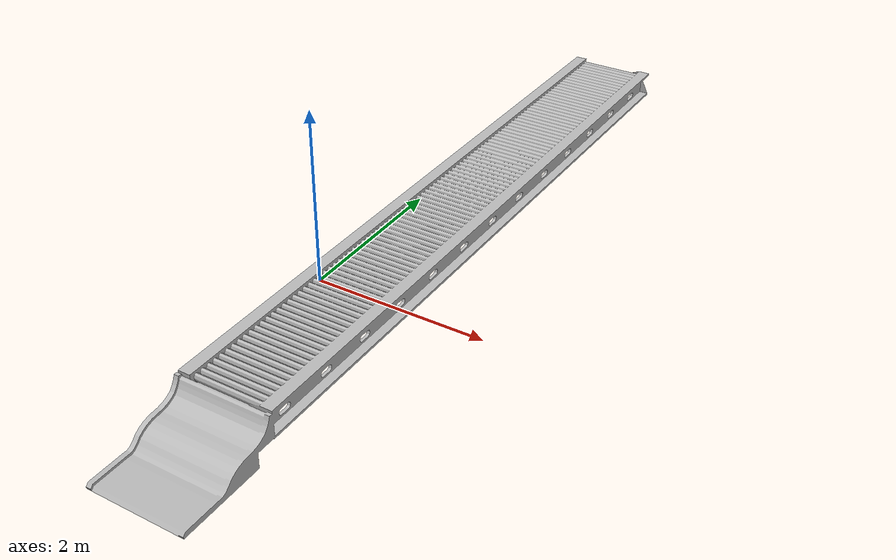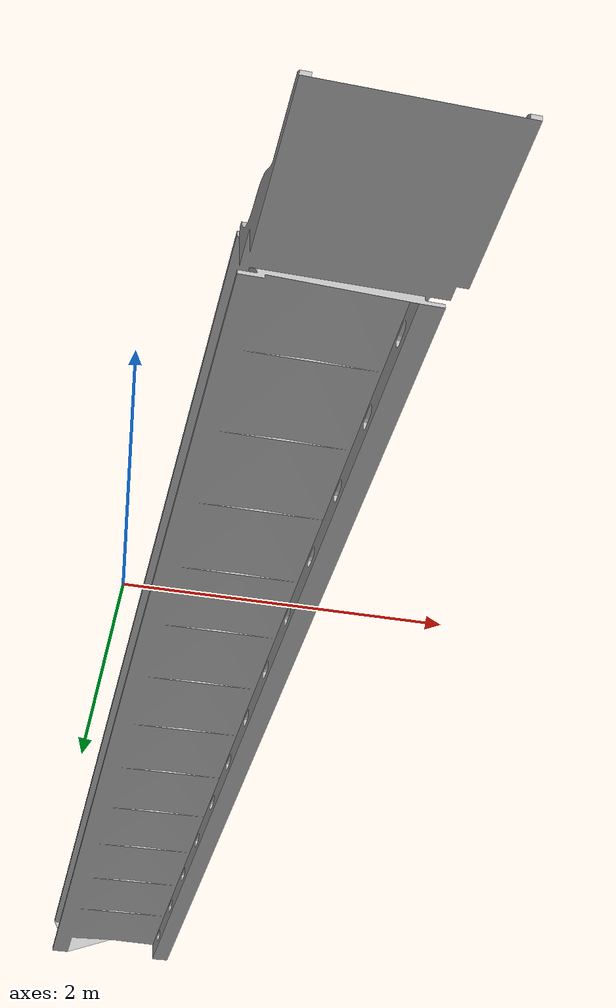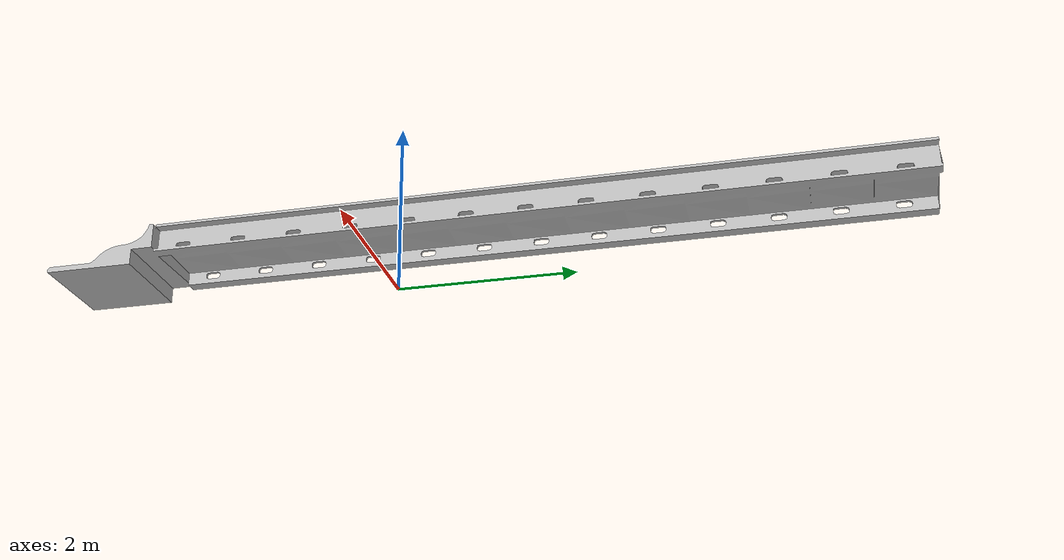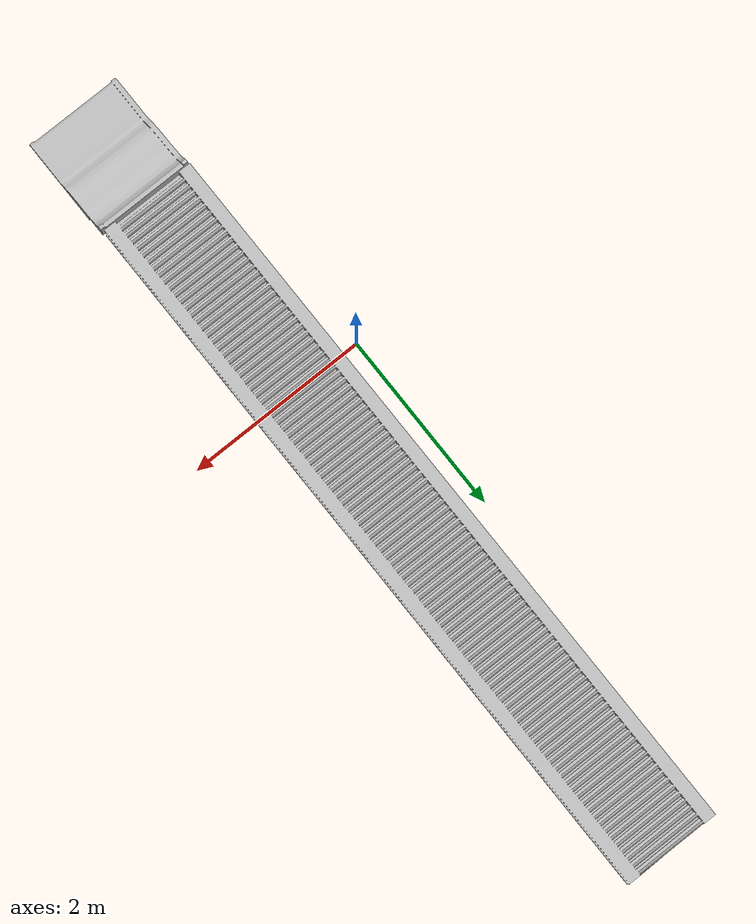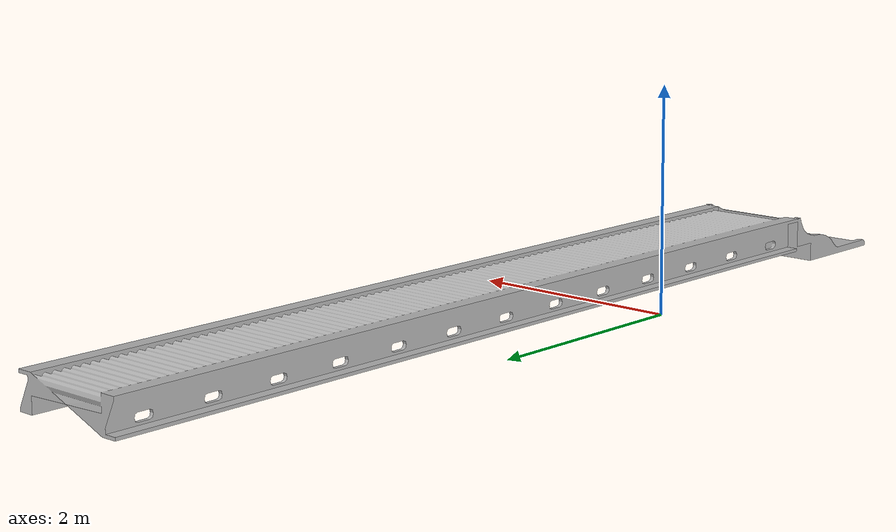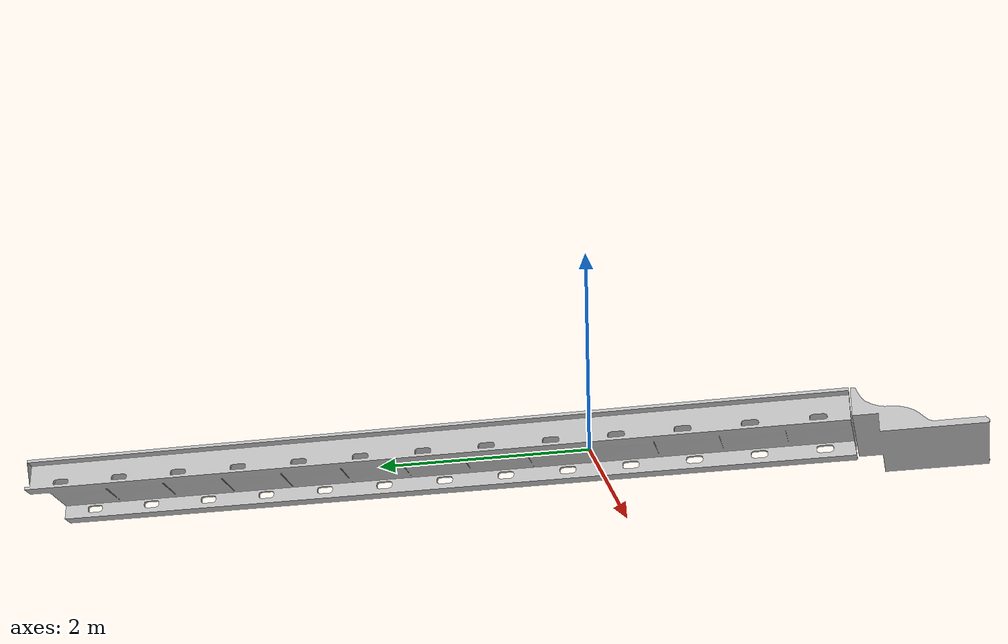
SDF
<?xml version="1.0" ?>
<sdf version="1.6">
  <model name="shipping_container_conveyor_ariac">
    <static>true</static>
    <link name="link">
      <collision name="collision_belt_side_front">
        <pose>1.191 1.6275 0.32 0 0 0</pose>
        <max_contacts>10</max_contacts>
        <geometry>
          <box>
            <size>0.137 7.98 0.3</size>
          </box>
        </geometry>
      </collision>

      <collision name="collision_belt_side_back">
        <pose>0.268 1.6275 0.32 0 0 0</pose>
        <max_contacts>10</max_contacts>
        <geometry>
          <box>
            <size>0.145 7.98 0.3</size>
          </box>
        </geometry>
      </collision>

      <visual name="visual">
        <geometry>
          <mesh>
            <scale>1.3 0.7 1.0</scale>
            <uri>model://shipping_container_conveyor_ariac/meshes/ShippingContainer_Textured.obj</uri>
          </mesh>
        </geometry>
      </visual>
    </link>
  </model>
</sdf>
